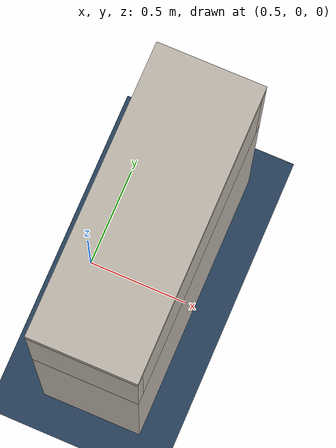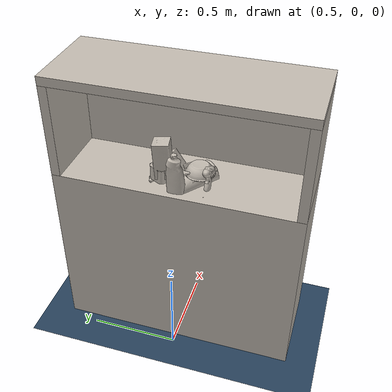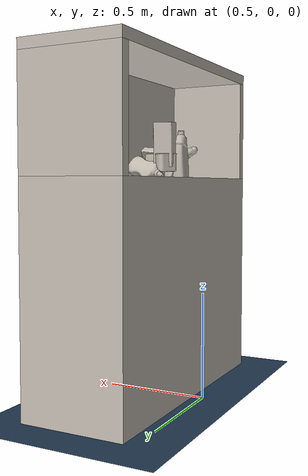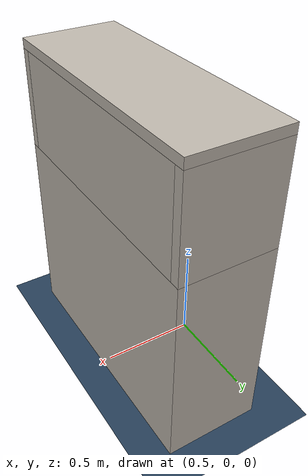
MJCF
<mujoco model="World">

  <compiler angle="radian" balanceinertia="true" inertiafromgeom="true" meshdir="/home/pracsys/GraspClutter6D_local" texturedir="/home/pracsys/GraspClutter6D_local" autolimits="true" />

  <option integrator="Euler" cone="elliptic" solver="CG" noslip_iterations="2">
    <flag warmstart="disable" multiccd="enable" />
  </option>

  <default>
    <geom density="10" />
  </default>

  <asset>

    <texture type="skybox" builtin="flat" rgb1="1 1 1" rgb2="0 0 0" width="512" height="512" />
    <texture name="grid" type="2d" builtin="checker" width="512" height="512" rgb1=".1 .2 .3" rgb2=".2 .3 .4" />
    <material name="grid" texture="grid" texrepeat="2 2" texuniform="true" specular="0" shininess="0" reflectance="0" emission="1" />

    <texture file="models/rs_table/ceramic.png" type="cube" name="tex-ceramic" />
    <material name="table_ceramic" reflectance="0.0" shininess="0.0" specular="0.2" texrepeat="1 1" texture="tex-ceramic" />
  <texture name="obj_000003_0_tex" type="2d" file="models_obj_m/obj_000003/obj_000003.png" /><material name="obj_000003_0_mat" texture="obj_000003_0_tex" specular="1.0" shininess="0.0" /><mesh name="obj_000003_0_vis" file="models_obj_m/obj_000003/obj_000003.obj" /><mesh name="obj_000003_0_obj_000003_collision_0" file="models_obj_m/obj_000003/obj_000003_collision_0.obj" /><mesh name="obj_000003_0_obj_000003_collision_1" file="models_obj_m/obj_000003/obj_000003_collision_1.obj" /><texture name="obj_000004_0_tex" type="2d" file="models_obj_m/obj_000004/obj_000004.png" /><material name="obj_000004_0_mat" texture="obj_000004_0_tex" specular="1.0" shininess="0.0" /><mesh name="obj_000004_0_vis" file="models_obj_m/obj_000004/obj_000004.obj" /><mesh name="obj_000004_0_obj_000004_collision_0" file="models_obj_m/obj_000004/obj_000004_collision_0.obj" /><mesh name="obj_000004_0_obj_000004_collision_1" file="models_obj_m/obj_000004/obj_000004_collision_1.obj" /><mesh name="obj_000004_0_obj_000004_collision_2" file="models_obj_m/obj_000004/obj_000004_collision_2.obj" /><mesh name="obj_000004_0_obj_000004_collision_3" file="models_obj_m/obj_000004/obj_000004_collision_3.obj" /><mesh name="obj_000004_0_obj_000004_collision_4" file="models_obj_m/obj_000004/obj_000004_collision_4.obj" /><mesh name="obj_000004_0_obj_000004_collision_5" file="models_obj_m/obj_000004/obj_000004_collision_5.obj" /><mesh name="obj_000004_0_obj_000004_collision_6" file="models_obj_m/obj_000004/obj_000004_collision_6.obj" /><mesh name="obj_000004_0_obj_000004_collision_7" file="models_obj_m/obj_000004/obj_000004_collision_7.obj" /><mesh name="obj_000004_0_obj_000004_collision_8" file="models_obj_m/obj_000004/obj_000004_collision_8.obj" /><mesh name="obj_000004_0_obj_000004_collision_9" file="models_obj_m/obj_000004/obj_000004_collision_9.obj" /><mesh name="obj_000004_0_obj_000004_collision_10" file="models_obj_m/obj_000004/obj_000004_collision_10.obj" /><mesh name="obj_000004_0_obj_000004_collision_11" file="models_obj_m/obj_000004/obj_000004_collision_11.obj" /><mesh name="obj_000004_0_obj_000004_collision_12" file="models_obj_m/obj_000004/obj_000004_collision_12.obj" /><mesh name="obj_000004_0_obj_000004_collision_13" file="models_obj_m/obj_000004/obj_000004_collision_13.obj" /><mesh name="obj_000004_0_obj_000004_collision_14" file="models_obj_m/obj_000004/obj_000004_collision_14.obj" /><mesh name="obj_000004_0_obj_000004_collision_15" file="models_obj_m/obj_000004/obj_000004_collision_15.obj" /><mesh name="obj_000004_0_obj_000004_collision_16" file="models_obj_m/obj_000004/obj_000004_collision_16.obj" /><mesh name="obj_000004_0_obj_000004_collision_17" file="models_obj_m/obj_000004/obj_000004_collision_17.obj" /><mesh name="obj_000004_0_obj_000004_collision_18" file="models_obj_m/obj_000004/obj_000004_collision_18.obj" /><mesh name="obj_000004_0_obj_000004_collision_19" file="models_obj_m/obj_000004/obj_000004_collision_19.obj" /><mesh name="obj_000004_0_obj_000004_collision_20" file="models_obj_m/obj_000004/obj_000004_collision_20.obj" /><mesh name="obj_000004_0_obj_000004_collision_21" file="models_obj_m/obj_000004/obj_000004_collision_21.obj" /><mesh name="obj_000004_0_obj_000004_collision_22" file="models_obj_m/obj_000004/obj_000004_collision_22.obj" /><texture name="obj_000005_0_tex" type="2d" file="models_obj_m/obj_000005/obj_000005.png" /><material name="obj_000005_0_mat" texture="obj_000005_0_tex" specular="1.0" shininess="0.0" /><mesh name="obj_000005_0_vis" file="models_obj_m/obj_000005/obj_000005.obj" /><mesh name="obj_000005_0_obj_000005_collision_0" file="models_obj_m/obj_000005/obj_000005_collision_0.obj" /><mesh name="obj_000005_0_obj_000005_collision_1" file="models_obj_m/obj_000005/obj_000005_collision_1.obj" /><mesh name="obj_000005_0_obj_000005_collision_2" file="models_obj_m/obj_000005/obj_000005_collision_2.obj" /><mesh name="obj_000005_0_obj_000005_collision_3" file="models_obj_m/obj_000005/obj_000005_collision_3.obj" /><texture name="obj_000007_0_tex" type="2d" file="models_obj_m/obj_000007/obj_000007.png" /><material name="obj_000007_0_mat" texture="obj_000007_0_tex" specular="1.0" shininess="0.0" /><mesh name="obj_000007_0_vis" file="models_obj_m/obj_000007/obj_000007.obj" /><mesh name="obj_000007_0_obj_000007_collision_0" file="models_obj_m/obj_000007/obj_000007_collision_0.obj" /><mesh name="obj_000007_0_obj_000007_collision_1" file="models_obj_m/obj_000007/obj_000007_collision_1.obj" /><mesh name="obj_000007_0_obj_000007_collision_2" file="models_obj_m/obj_000007/obj_000007_collision_2.obj" /><mesh name="obj_000007_0_obj_000007_collision_3" file="models_obj_m/obj_000007/obj_000007_collision_3.obj" /><mesh name="obj_000007_0_obj_000007_collision_4" file="models_obj_m/obj_000007/obj_000007_collision_4.obj" /><mesh name="obj_000007_0_obj_000007_collision_5" file="models_obj_m/obj_000007/obj_000007_collision_5.obj" /><mesh name="obj_000007_0_obj_000007_collision_6" file="models_obj_m/obj_000007/obj_000007_collision_6.obj" /><mesh name="obj_000007_0_obj_000007_collision_7" file="models_obj_m/obj_000007/obj_000007_collision_7.obj" /><mesh name="obj_000007_0_obj_000007_collision_8" file="models_obj_m/obj_000007/obj_000007_collision_8.obj" /><texture name="obj_000008_0_tex" type="2d" file="models_obj_m/obj_000008/obj_000008.png" /><material name="obj_000008_0_mat" texture="obj_000008_0_tex" specular="1.0" shininess="0.0" /><mesh name="obj_000008_0_vis" file="models_obj_m/obj_000008/obj_000008.obj" /><mesh name="obj_000008_0_obj_000008_collision_0" file="models_obj_m/obj_000008/obj_000008_collision_0.obj" /><mesh name="obj_000008_0_obj_000008_collision_1" file="models_obj_m/obj_000008/obj_000008_collision_1.obj" /><texture name="obj_000009_0_tex" type="2d" file="models_obj_m/obj_000009/obj_000010.png" /><material name="obj_000009_0_mat" texture="obj_000009_0_tex" specular="1.0" shininess="0.0" /><mesh name="obj_000009_0_vis" file="models_obj_m/obj_000009/obj_000009.obj" /><mesh name="obj_000009_0_obj_000009_collision_0" file="models_obj_m/obj_000009/obj_000009_collision_0.obj" /><mesh name="obj_000009_0_obj_000009_collision_1" file="models_obj_m/obj_000009/obj_000009_collision_1.obj" /><mesh name="obj_000009_0_obj_000009_collision_2" file="models_obj_m/obj_000009/obj_000009_collision_2.obj" /><mesh name="obj_000009_0_obj_000009_collision_3" file="models_obj_m/obj_000009/obj_000009_collision_3.obj" /><mesh name="obj_000009_0_obj_000009_collision_4" file="models_obj_m/obj_000009/obj_000009_collision_4.obj" /><mesh name="obj_000009_0_obj_000009_collision_5" file="models_obj_m/obj_000009/obj_000009_collision_5.obj" /><mesh name="obj_000009_0_obj_000009_collision_6" file="models_obj_m/obj_000009/obj_000009_collision_6.obj" /><mesh name="obj_000009_0_obj_000009_collision_7" file="models_obj_m/obj_000009/obj_000009_collision_7.obj" /><mesh name="obj_000009_0_obj_000009_collision_8" file="models_obj_m/obj_000009/obj_000009_collision_8.obj" /><mesh name="obj_000009_0_obj_000009_collision_9" file="models_obj_m/obj_000009/obj_000009_collision_9.obj" /><mesh name="obj_000009_0_obj_000009_collision_10" file="models_obj_m/obj_000009/obj_000009_collision_10.obj" /><mesh name="obj_000009_0_obj_000009_collision_11" file="models_obj_m/obj_000009/obj_000009_collision_11.obj" /><mesh name="obj_000009_0_obj_000009_collision_12" file="models_obj_m/obj_000009/obj_000009_collision_12.obj" /><mesh name="obj_000009_0_obj_000009_collision_13" file="models_obj_m/obj_000009/obj_000009_collision_13.obj" /><mesh name="obj_000009_0_obj_000009_collision_14" file="models_obj_m/obj_000009/obj_000009_collision_14.obj" /><mesh name="obj_000009_0_obj_000009_collision_15" file="models_obj_m/obj_000009/obj_000009_collision_15.obj" /><mesh name="obj_000009_0_obj_000009_collision_16" file="models_obj_m/obj_000009/obj_000009_collision_16.obj" /><mesh name="obj_000009_0_obj_000009_collision_17" file="models_obj_m/obj_000009/obj_000009_collision_17.obj" /><mesh name="obj_000009_0_obj_000009_collision_18" file="models_obj_m/obj_000009/obj_000009_collision_18.obj" /><mesh name="obj_000009_0_obj_000009_collision_19" file="models_obj_m/obj_000009/obj_000009_collision_19.obj" /><texture name="obj_000011_0_tex" type="2d" file="models_obj_m/obj_000011/obj_000011.png" /><material name="obj_000011_0_mat" texture="obj_000011_0_tex" specular="1.0" shininess="0.0" /><mesh name="obj_000011_0_vis" file="models_obj_m/obj_000011/obj_000011.obj" /><mesh name="obj_000011_0_obj_000011_collision_0" file="models_obj_m/obj_000011/obj_000011_collision_0.obj" /><mesh name="obj_000011_0_obj_000011_collision_1" file="models_obj_m/obj_000011/obj_000011_collision_1.obj" /><texture name="obj_000012_0_tex" type="2d" file="models_obj_m/obj_000012/obj_000013.png" /><material name="obj_000012_0_mat" texture="obj_000012_0_tex" specular="1.0" shininess="0.0" /><mesh name="obj_000012_0_vis" file="models_obj_m/obj_000012/obj_000012.obj" /><mesh name="obj_000012_0_obj_000012_collision_0" file="models_obj_m/obj_000012/obj_000012_collision_0.obj" /><mesh name="obj_000012_0_obj_000012_collision_1" file="models_obj_m/obj_000012/obj_000012_collision_1.obj" /><mesh name="obj_000012_0_obj_000012_collision_2" file="models_obj_m/obj_000012/obj_000012_collision_2.obj" /><texture name="obj_000013_0_tex" type="2d" file="models_obj_m/obj_000013/obj_000014.png" /><material name="obj_000013_0_mat" texture="obj_000013_0_tex" specular="1.0" shininess="0.0" /><mesh name="obj_000013_0_vis" file="models_obj_m/obj_000013/obj_000013.obj" /><mesh name="obj_000013_0_obj_000013_collision_0" file="models_obj_m/obj_000013/obj_000013_collision_0.obj" /><mesh name="obj_000013_0_obj_000013_collision_1" file="models_obj_m/obj_000013/obj_000013_collision_1.obj" /><mesh name="obj_000013_0_obj_000013_collision_2" file="models_obj_m/obj_000013/obj_000013_collision_2.obj" /><mesh name="obj_000013_0_obj_000013_collision_3" file="models_obj_m/obj_000013/obj_000013_collision_3.obj" /><mesh name="obj_000013_0_obj_000013_collision_4" file="models_obj_m/obj_000013/obj_000013_collision_4.obj" /><mesh name="obj_000013_0_obj_000013_collision_5" file="models_obj_m/obj_000013/obj_000013_collision_5.obj" /><mesh name="obj_000013_0_obj_000013_collision_6" file="models_obj_m/obj_000013/obj_000013_collision_6.obj" /><mesh name="obj_000013_0_obj_000013_collision_7" file="models_obj_m/obj_000013/obj_000013_collision_7.obj" /><mesh name="obj_000013_0_obj_000013_collision_8" file="models_obj_m/obj_000013/obj_000013_collision_8.obj" /><mesh name="obj_000013_0_obj_000013_collision_9" file="models_obj_m/obj_000013/obj_000013_collision_9.obj" /><mesh name="obj_000013_0_obj_000013_collision_10" file="models_obj_m/obj_000013/obj_000013_collision_10.obj" /><mesh name="obj_000013_0_obj_000013_collision_11" file="models_obj_m/obj_000013/obj_000013_collision_11.obj" /><mesh name="obj_000013_0_obj_000013_collision_12" file="models_obj_m/obj_000013/obj_000013_collision_12.obj" /><mesh name="obj_000013_0_obj_000013_collision_13" file="models_obj_m/obj_000013/obj_000013_collision_13.obj" /><mesh name="obj_000013_0_obj_000013_collision_14" file="models_obj_m/obj_000013/obj_000013_collision_14.obj" /><mesh name="obj_000013_0_obj_000013_collision_15" file="models_obj_m/obj_000013/obj_000013_collision_15.obj" /><mesh name="obj_000013_0_obj_000013_collision_16" file="models_obj_m/obj_000013/obj_000013_collision_16.obj" /><mesh name="obj_000013_0_obj_000013_collision_17" file="models_obj_m/obj_000013/obj_000013_collision_17.obj" /><mesh name="obj_000013_0_obj_000013_collision_18" file="models_obj_m/obj_000013/obj_000013_collision_18.obj" /><mesh name="obj_000013_0_obj_000013_collision_19" file="models_obj_m/obj_000013/obj_000013_collision_19.obj" /><mesh name="obj_000013_0_obj_000013_collision_20" file="models_obj_m/obj_000013/obj_000013_collision_20.obj" /><mesh name="obj_000013_0_obj_000013_collision_21" file="models_obj_m/obj_000013/obj_000013_collision_21.obj" /><mesh name="obj_000013_0_obj_000013_collision_22" file="models_obj_m/obj_000013/obj_000013_collision_22.obj" /><mesh name="obj_000013_0_obj_000013_collision_23" file="models_obj_m/obj_000013/obj_000013_collision_23.obj" /><mesh name="obj_000013_0_obj_000013_collision_24" file="models_obj_m/obj_000013/obj_000013_collision_24.obj" /><mesh name="obj_000013_0_obj_000013_collision_25" file="models_obj_m/obj_000013/obj_000013_collision_25.obj" /><mesh name="obj_000013_0_obj_000013_collision_26" file="models_obj_m/obj_000013/obj_000013_collision_26.obj" /><mesh name="obj_000013_0_obj_000013_collision_27" file="models_obj_m/obj_000013/obj_000013_collision_27.obj" /><mesh name="obj_000013_0_obj_000013_collision_28" file="models_obj_m/obj_000013/obj_000013_collision_28.obj" /><mesh name="obj_000013_0_obj_000013_collision_29" file="models_obj_m/obj_000013/obj_000013_collision_29.obj" /><mesh name="obj_000013_0_obj_000013_collision_30" file="models_obj_m/obj_000013/obj_000013_collision_30.obj" /><mesh name="obj_000013_0_obj_000013_collision_31" file="models_obj_m/obj_000013/obj_000013_collision_31.obj" /><mesh name="obj_000013_0_obj_000013_collision_32" file="models_obj_m/obj_000013/obj_000013_collision_32.obj" /><mesh name="obj_000013_0_obj_000013_collision_33" file="models_obj_m/obj_000013/obj_000013_collision_33.obj" /><mesh name="obj_000013_0_obj_000013_collision_34" file="models_obj_m/obj_000013/obj_000013_collision_34.obj" /><mesh name="obj_000013_0_obj_000013_collision_35" file="models_obj_m/obj_000013/obj_000013_collision_35.obj" /><mesh name="obj_000013_0_obj_000013_collision_36" file="models_obj_m/obj_000013/obj_000013_collision_36.obj" /><mesh name="obj_000013_0_obj_000013_collision_37" file="models_obj_m/obj_000013/obj_000013_collision_37.obj" /><mesh name="obj_000013_0_obj_000013_collision_38" file="models_obj_m/obj_000013/obj_000013_collision_38.obj" /><mesh name="obj_000013_0_obj_000013_collision_39" file="models_obj_m/obj_000013/obj_000013_collision_39.obj" /><mesh name="obj_000013_0_obj_000013_collision_40" file="models_obj_m/obj_000013/obj_000013_collision_40.obj" /><mesh name="obj_000013_0_obj_000013_collision_41" file="models_obj_m/obj_000013/obj_000013_collision_41.obj" /><mesh name="obj_000013_0_obj_000013_collision_42" file="models_obj_m/obj_000013/obj_000013_collision_42.obj" /><texture name="obj_000014_0_tex" type="2d" file="models_obj_m/obj_000014/obj_000014.png" /><material name="obj_000014_0_mat" texture="obj_000014_0_tex" specular="1.0" shininess="0.0" /><mesh name="obj_000014_0_vis" file="models_obj_m/obj_000014/obj_000014.obj" /><mesh name="obj_000014_0_obj_000014_collision_0" file="models_obj_m/obj_000014/obj_000014_collision_0.obj" /><mesh name="obj_000014_0_obj_000014_collision_1" file="models_obj_m/obj_000014/obj_000014_collision_1.obj" /><mesh name="obj_000014_0_obj_000014_collision_2" file="models_obj_m/obj_000014/obj_000014_collision_2.obj" /><mesh name="obj_000014_0_obj_000014_collision_3" file="models_obj_m/obj_000014/obj_000014_collision_3.obj" /><mesh name="obj_000014_0_obj_000014_collision_4" file="models_obj_m/obj_000014/obj_000014_collision_4.obj" /><mesh name="obj_000014_0_obj_000014_collision_5" file="models_obj_m/obj_000014/obj_000014_collision_5.obj" /><mesh name="obj_000014_0_obj_000014_collision_6" file="models_obj_m/obj_000014/obj_000014_collision_6.obj" /><mesh name="obj_000014_0_obj_000014_collision_7" file="models_obj_m/obj_000014/obj_000014_collision_7.obj" /><mesh name="obj_000014_0_obj_000014_collision_8" file="models_obj_m/obj_000014/obj_000014_collision_8.obj" /><mesh name="obj_000014_0_obj_000014_collision_9" file="models_obj_m/obj_000014/obj_000014_collision_9.obj" /><mesh name="obj_000014_0_obj_000014_collision_10" file="models_obj_m/obj_000014/obj_000014_collision_10.obj" /><mesh name="obj_000014_0_obj_000014_collision_11" file="models_obj_m/obj_000014/obj_000014_collision_11.obj" /><mesh name="obj_000014_0_obj_000014_collision_12" file="models_obj_m/obj_000014/obj_000014_collision_12.obj" /><mesh name="obj_000014_0_obj_000014_collision_13" file="models_obj_m/obj_000014/obj_000014_collision_13.obj" /><mesh name="obj_000014_0_obj_000014_collision_14" file="models_obj_m/obj_000014/obj_000014_collision_14.obj" /><mesh name="obj_000014_0_obj_000014_collision_15" file="models_obj_m/obj_000014/obj_000014_collision_15.obj" /><mesh name="obj_000014_0_obj_000014_collision_16" file="models_obj_m/obj_000014/obj_000014_collision_16.obj" /><mesh name="obj_000014_0_obj_000014_collision_17" file="models_obj_m/obj_000014/obj_000014_collision_17.obj" /><mesh name="obj_000014_0_obj_000014_collision_18" file="models_obj_m/obj_000014/obj_000014_collision_18.obj" /><mesh name="obj_000014_0_obj_000014_collision_19" file="models_obj_m/obj_000014/obj_000014_collision_19.obj" /><mesh name="obj_000014_0_obj_000014_collision_20" file="models_obj_m/obj_000014/obj_000014_collision_20.obj" /><mesh name="obj_000014_0_obj_000014_collision_21" file="models_obj_m/obj_000014/obj_000014_collision_21.obj" /><mesh name="obj_000014_0_obj_000014_collision_22" file="models_obj_m/obj_000014/obj_000014_collision_22.obj" /><mesh name="obj_000014_0_obj_000014_collision_23" file="models_obj_m/obj_000014/obj_000014_collision_23.obj" /><mesh name="obj_000014_0_obj_000014_collision_24" file="models_obj_m/obj_000014/obj_000014_collision_24.obj" /><mesh name="obj_000014_0_obj_000014_collision_25" file="models_obj_m/obj_000014/obj_000014_collision_25.obj" /><mesh name="obj_000014_0_obj_000014_collision_26" file="models_obj_m/obj_000014/obj_000014_collision_26.obj" /><mesh name="obj_000014_0_obj_000014_collision_27" file="models_obj_m/obj_000014/obj_000014_collision_27.obj" /><mesh name="obj_000014_0_obj_000014_collision_28" file="models_obj_m/obj_000014/obj_000014_collision_28.obj" /><mesh name="obj_000014_0_obj_000014_collision_29" file="models_obj_m/obj_000014/obj_000014_collision_29.obj" /><mesh name="obj_000014_0_obj_000014_collision_30" file="models_obj_m/obj_000014/obj_000014_collision_30.obj" /><mesh name="obj_000014_0_obj_000014_collision_31" file="models_obj_m/obj_000014/obj_000014_collision_31.obj" /><mesh name="obj_000014_0_obj_000014_collision_32" file="models_obj_m/obj_000014/obj_000014_collision_32.obj" /><mesh name="obj_000014_0_obj_000014_collision_33" file="models_obj_m/obj_000014/obj_000014_collision_33.obj" /><mesh name="obj_000014_0_obj_000014_collision_34" file="models_obj_m/obj_000014/obj_000014_collision_34.obj" /><mesh name="obj_000014_0_obj_000014_collision_35" file="models_obj_m/obj_000014/obj_000014_collision_35.obj" /><mesh name="obj_000014_0_obj_000014_collision_36" file="models_obj_m/obj_000014/obj_000014_collision_36.obj" /><mesh name="obj_000014_0_obj_000014_collision_37" file="models_obj_m/obj_000014/obj_000014_collision_37.obj" /><mesh name="obj_000014_0_obj_000014_collision_38" file="models_obj_m/obj_000014/obj_000014_collision_38.obj" /><texture name="obj_000015_0_tex" type="2d" file="models_obj_m/obj_000015/obj_000015.png" /><material name="obj_000015_0_mat" texture="obj_000015_0_tex" specular="1.0" shininess="0.0" /><mesh name="obj_000015_0_vis" file="models_obj_m/obj_000015/obj_000015.obj" /><mesh name="obj_000015_0_obj_000015_collision_0" file="models_obj_m/obj_000015/obj_000015_collision_0.obj" /><mesh name="obj_000015_0_obj_000015_collision_1" file="models_obj_m/obj_000015/obj_000015_collision_1.obj" /><texture name="obj_000016_0_tex" type="2d" file="models_obj_m/obj_000016/obj_000016.png" /><material name="obj_000016_0_mat" texture="obj_000016_0_tex" specular="1.0" shininess="0.0" /><mesh name="obj_000016_0_vis" file="models_obj_m/obj_000016/obj_000016.obj" /><mesh name="obj_000016_0_obj_000016_collision_0" file="models_obj_m/obj_000016/obj_000016_collision_0.obj" /><mesh name="obj_000016_0_obj_000016_collision_1" file="models_obj_m/obj_000016/obj_000016_collision_1.obj" /><texture name="obj_000017_0_tex" type="2d" file="models_obj_m/obj_000017/obj_000018.png" /><material name="obj_000017_0_mat" texture="obj_000017_0_tex" specular="1.0" shininess="0.0" /><mesh name="obj_000017_0_vis" file="models_obj_m/obj_000017/obj_000017.obj" /><mesh name="obj_000017_0_obj_000017_collision_0" file="models_obj_m/obj_000017/obj_000017_collision_0.obj" /><mesh name="obj_000017_0_obj_000017_collision_1" file="models_obj_m/obj_000017/obj_000017_collision_1.obj" /><mesh name="obj_000017_0_obj_000017_collision_2" file="models_obj_m/obj_000017/obj_000017_collision_2.obj" /><mesh name="obj_000017_0_obj_000017_collision_3" file="models_obj_m/obj_000017/obj_000017_collision_3.obj" /><mesh name="obj_000017_0_obj_000017_collision_4" file="models_obj_m/obj_000017/obj_000017_collision_4.obj" /><mesh name="obj_000017_0_obj_000017_collision_5" file="models_obj_m/obj_000017/obj_000017_collision_5.obj" /><mesh name="obj_000017_0_obj_000017_collision_6" file="models_obj_m/obj_000017/obj_000017_collision_6.obj" /><mesh name="obj_000017_0_obj_000017_collision_7" file="models_obj_m/obj_000017/obj_000017_collision_7.obj" /><mesh name="obj_000017_0_obj_000017_collision_8" file="models_obj_m/obj_000017/obj_000017_collision_8.obj" /><mesh name="obj_000017_0_obj_000017_collision_9" file="models_obj_m/obj_000017/obj_000017_collision_9.obj" /><mesh name="obj_000017_0_obj_000017_collision_10" file="models_obj_m/obj_000017/obj_000017_collision_10.obj" /><mesh name="obj_000017_0_obj_000017_collision_11" file="models_obj_m/obj_000017/obj_000017_collision_11.obj" /><mesh name="obj_000017_0_obj_000017_collision_12" file="models_obj_m/obj_000017/obj_000017_collision_12.obj" /><mesh name="obj_000017_0_obj_000017_collision_13" file="models_obj_m/obj_000017/obj_000017_collision_13.obj" /><mesh name="obj_000017_0_obj_000017_collision_14" file="models_obj_m/obj_000017/obj_000017_collision_14.obj" /><mesh name="obj_000017_0_obj_000017_collision_15" file="models_obj_m/obj_000017/obj_000017_collision_15.obj" /><mesh name="obj_000017_0_obj_000017_collision_16" file="models_obj_m/obj_000017/obj_000017_collision_16.obj" /><mesh name="obj_000017_0_obj_000017_collision_17" file="models_obj_m/obj_000017/obj_000017_collision_17.obj" /><mesh name="obj_000017_0_obj_000017_collision_18" file="models_obj_m/obj_000017/obj_000017_collision_18.obj" /><mesh name="obj_000017_0_obj_000017_collision_19" file="models_obj_m/obj_000017/obj_000017_collision_19.obj" /><mesh name="obj_000017_0_obj_000017_collision_20" file="models_obj_m/obj_000017/obj_000017_collision_20.obj" /><mesh name="obj_000017_0_obj_000017_collision_21" file="models_obj_m/obj_000017/obj_000017_collision_21.obj" /><mesh name="obj_000017_0_obj_000017_collision_22" file="models_obj_m/obj_000017/obj_000017_collision_22.obj" /><mesh name="obj_000017_0_obj_000017_collision_23" file="models_obj_m/obj_000017/obj_000017_collision_23.obj" /><mesh name="obj_000017_0_obj_000017_collision_24" file="models_obj_m/obj_000017/obj_000017_collision_24.obj" /><mesh name="obj_000017_0_obj_000017_collision_25" file="models_obj_m/obj_000017/obj_000017_collision_25.obj" /><mesh name="obj_000017_0_obj_000017_collision_26" file="models_obj_m/obj_000017/obj_000017_collision_26.obj" /><mesh name="obj_000017_0_obj_000017_collision_27" file="models_obj_m/obj_000017/obj_000017_collision_27.obj" /></asset>

  <worldbody>
    <geom name="floor" size="2 2 0.05" type="plane" material="grid" condim="3" />
    <light directional="true" pos="-0.5 0.5 3" dir="0 0 -1" castshadow="false" diffuse="1 1 1" />
    <body name="workspace" pos="0.8 0 0">
      <geom name="shelf_bottom" size="0.25 0.68 0.525" pos="0 0 0.525" type="box" material="table_ceramic" />
      <geom name="shelf_top" size="0.25 0.68 0.025" pos="0 0 1.595" type="box" material="table_ceramic" />
      <geom name="shelf_padding_left" size="0.25 0.025 0.26" pos="0 -0.655 1.31" type="box" material="table_ceramic" />
      <geom name="shelf_padding_right" size="0.25 0.025 0.26" pos="0 0.655 1.31" type="box" material="table_ceramic" />
      <geom name="shelf_padding_back" size="0.05 0.63 0.26" pos="0.2 0 1.31" type="box" material="table_ceramic" />
    </body>
  <body name="obj_000003_0" pos="0.7398774645984779 0.030803465620769882 1.1090335032421221" quat="0.7216060114727308 -0.22865275685680678 0.21883988701550572 0.6157205411866972"><joint name="obj_000003_0_joint" type="free" limited="false" actuatorfrclimited="false" /><geom name="obj_000003_0_geom" type="mesh" contype="0" conaffinity="0" group="1" mesh="obj_000003_0_vis" material="obj_000003_0_mat" /><geom type="mesh" contype="3" conaffinity="3" group="3" rgba="0.522509730671621 0.2757706064801614 0.3354227120316712 1" mesh="obj_000003_0_obj_000003_collision_0" /><geom type="mesh" contype="3" conaffinity="3" group="3" rgba="0.5516880957351997 0.30786775055087157 0.8022185455408283 1" mesh="obj_000003_0_obj_000003_collision_1" /></body><body name="obj_000004_0" pos="0.7807166520652554 0.1060681679698029 1.067837693718874" quat="0.5338744000833219 0.4877948835821048 0.523269738152525 0.45080268147004343"><joint name="obj_000004_0_joint" type="free" limited="false" actuatorfrclimited="false" /><geom name="obj_000004_0_geom" type="mesh" contype="0" conaffinity="0" group="1" mesh="obj_000004_0_vis" material="obj_000004_0_mat" /><geom type="mesh" contype="3" conaffinity="3" group="3" rgba="0.9006364109388675 0.519839966144869 0.14706711888770962 1" mesh="obj_000004_0_obj_000004_collision_0" /><geom type="mesh" contype="3" conaffinity="3" group="3" rgba="0.5381862094377646 0.9079565306792778 0.5860391296454226 1" mesh="obj_000004_0_obj_000004_collision_1" /><geom type="mesh" contype="3" conaffinity="3" group="3" rgba="0.5480980169898275 0.08959733837327 0.9583058214694634 1" mesh="obj_000004_0_obj_000004_collision_2" /><geom type="mesh" contype="3" conaffinity="3" group="3" rgba="0.7348365413245799 0.9954340839881138 0.10043620261647124 1" mesh="obj_000004_0_obj_000004_collision_3" /><geom type="mesh" contype="3" conaffinity="3" group="3" rgba="0.15354151346682998 0.3992493537144245 0.9018485612644948 1" mesh="obj_000004_0_obj_000004_collision_4" /><geom type="mesh" contype="3" conaffinity="3" group="3" rgba="0.5002296823323479 0.06984196192688352 0.14791196849948396 1" mesh="obj_000004_0_obj_000004_collision_5" /><geom type="mesh" contype="3" conaffinity="3" group="3" rgba="0.8801698595600871 0.26981609947861984 0.5413749209604201 1" mesh="obj_000004_0_obj_000004_collision_6" /><geom type="mesh" contype="3" conaffinity="3" group="3" rgba="0.7455497002678284 0.842184542639177 0.5322202076862146 1" mesh="obj_000004_0_obj_000004_collision_7" /><geom type="mesh" contype="3" conaffinity="3" group="3" rgba="0.4442591382610347 0.03638499919506211 0.32497635780499234 1" mesh="obj_000004_0_obj_000004_collision_8" /><geom type="mesh" contype="3" conaffinity="3" group="3" rgba="0.347627915730894 0.06862688241171433 0.2798410387094733 1" mesh="obj_000004_0_obj_000004_collision_9" /><geom type="mesh" contype="3" conaffinity="3" group="3" rgba="0.37436058860529653 0.8129023073913533 0.26614439644261234 1" mesh="obj_000004_0_obj_000004_collision_10" /><geom type="mesh" contype="3" conaffinity="3" group="3" rgba="0.6651690258226822 0.3522546747219869 0.10346100033130279 1" mesh="obj_000004_0_obj_000004_collision_11" /><geom type="mesh" contype="3" conaffinity="3" group="3" rgba="0.37709868933847024 0.90775268626264 0.22612048573823684 1" mesh="obj_000004_0_obj_000004_collision_12" /><geom type="mesh" contype="3" conaffinity="3" group="3" rgba="0.40627473735328157 0.5372136836683266 0.09197578627779501 1" mesh="obj_000004_0_obj_000004_collision_13" /><geom type="mesh" contype="3" conaffinity="3" group="3" rgba="0.5166762315831523 0.5043939028531624 0.5872248864695762 1" mesh="obj_000004_0_obj_000004_collision_14" /><geom type="mesh" contype="3" conaffinity="3" group="3" rgba="0.9082988442703623 0.180499146533042 0.06796330417599283 1" mesh="obj_000004_0_obj_000004_collision_15" /><geom type="mesh" contype="3" conaffinity="3" group="3" rgba="0.3943402105248509 0.6197627239371787 0.4344456177319421 1" mesh="obj_000004_0_obj_000004_collision_16" /><geom type="mesh" contype="3" conaffinity="3" group="3" rgba="0.7831743542292524 0.42593724102287467 0.6857518540249657 1" mesh="obj_000004_0_obj_000004_collision_17" /><geom type="mesh" contype="3" conaffinity="3" group="3" rgba="0.16096816650240264 0.6010361248517645 0.059463136740677824 1" mesh="obj_000004_0_obj_000004_collision_18" /><geom type="mesh" contype="3" conaffinity="3" group="3" rgba="0.44263326221518995 0.2502881781833013 0.38014160116271456 1" mesh="obj_000004_0_obj_000004_collision_19" /><geom type="mesh" contype="3" conaffinity="3" group="3" rgba="0.5463028526085283 0.845330838869169 0.028012824828687388 1" mesh="obj_000004_0_obj_000004_collision_20" /><geom type="mesh" contype="3" conaffinity="3" group="3" rgba="0.19910255883632533 0.853207251405083 0.4267815842990055 1" mesh="obj_000004_0_obj_000004_collision_21" /><geom type="mesh" contype="3" conaffinity="3" group="3" rgba="0.013081679159259063 0.8478266493247634 0.5767717804295942 1" mesh="obj_000004_0_obj_000004_collision_22" /></body><body name="obj_000005_0" pos="0.7284989947019965 0.13235466193933598 1.0837065733890465" quat="0.580484216075862 0.015247032007712333 -0.800961535741581 -0.14582942489167158"><joint name="obj_000005_0_joint" type="free" limited="false" actuatorfrclimited="false" /><geom name="obj_000005_0_geom" type="mesh" contype="0" conaffinity="0" group="1" mesh="obj_000005_0_vis" material="obj_000005_0_mat" /><geom type="mesh" contype="3" conaffinity="3" group="3" rgba="0.7022177830689367 0.5826341853352067 0.8165841864018348 1" mesh="obj_000005_0_obj_000005_collision_0" /><geom type="mesh" contype="3" conaffinity="3" group="3" rgba="0.8850110305129232 0.6858243586259702 0.23668113982222616 1" mesh="obj_000005_0_obj_000005_collision_1" /><geom type="mesh" contype="3" conaffinity="3" group="3" rgba="0.3521162735319521 0.8507480837221914 0.47569448758993216 1" mesh="obj_000005_0_obj_000005_collision_2" /><geom type="mesh" contype="3" conaffinity="3" group="3" rgba="0.9128805975392907 0.1623848974121762 0.6573614293432378 1" mesh="obj_000005_0_obj_000005_collision_3" /></body><body name="obj_000007_0" pos="0.7168596790080464 0.0730124052008097 1.1053110912906454" quat="0.5748936844714575 -0.6526526143680562 0.3616690096110716 0.3357638217561859"><joint name="obj_000007_0_joint" type="free" limited="false" actuatorfrclimited="false" /><geom name="obj_000007_0_geom" type="mesh" contype="0" conaffinity="0" group="1" mesh="obj_000007_0_vis" material="obj_000007_0_mat" /><geom type="mesh" contype="3" conaffinity="3" group="3" rgba="0.8352706854217573 0.9362994234831694 0.293846875833475 1" mesh="obj_000007_0_obj_000007_collision_0" /><geom type="mesh" contype="3" conaffinity="3" group="3" rgba="0.19905331661291714 0.4589533019713804 0.06900329109829795 1" mesh="obj_000007_0_obj_000007_collision_1" /><geom type="mesh" contype="3" conaffinity="3" group="3" rgba="0.09308414112438301 0.15050338013169284 0.9151604575537959 1" mesh="obj_000007_0_obj_000007_collision_2" /><geom type="mesh" contype="3" conaffinity="3" group="3" rgba="0.5321495441159548 0.7015834228771671 0.15224241133161276 1" mesh="obj_000007_0_obj_000007_collision_3" /><geom type="mesh" contype="3" conaffinity="3" group="3" rgba="0.23157390654164967 0.05668202494056429 0.16362068486781922 1" mesh="obj_000007_0_obj_000007_collision_4" /><geom type="mesh" contype="3" conaffinity="3" group="3" rgba="0.434682609159569 0.02891498183785912 0.4135716003922958 1" mesh="obj_000007_0_obj_000007_collision_5" /><geom type="mesh" contype="3" conaffinity="3" group="3" rgba="0.3986174188827881 0.6060589903191558 0.6080009673791554 1" mesh="obj_000007_0_obj_000007_collision_6" /><geom type="mesh" contype="3" conaffinity="3" group="3" rgba="0.19756852407433856 0.9438271125215391 0.3383181352472745 1" mesh="obj_000007_0_obj_000007_collision_7" /><geom type="mesh" contype="3" conaffinity="3" group="3" rgba="0.8336516710698538 0.1310754047491739 0.3201867808203366 1" mesh="obj_000007_0_obj_000007_collision_8" /></body><body name="obj_000008_0" pos="0.768425327634765 -0.015402948847224512 1.072553409256788" quat="0.38385370247892486 -0.02816708159486666 -0.5356260389449015 0.7516433309834155"><joint name="obj_000008_0_joint" type="free" limited="false" actuatorfrclimited="false" /><geom name="obj_000008_0_geom" type="mesh" contype="0" conaffinity="0" group="1" mesh="obj_000008_0_vis" material="obj_000008_0_mat" /><geom type="mesh" contype="3" conaffinity="3" group="3" rgba="0.01671885427652786 0.8783564729505184 0.3287082962157769 1" mesh="obj_000008_0_obj_000008_collision_0" /><geom type="mesh" contype="3" conaffinity="3" group="3" rgba="0.2759906839891276 0.5799351894391934 0.46463070880456725 1" mesh="obj_000008_0_obj_000008_collision_1" /></body><body name="obj_000009_0" pos="0.6442457347408685 0.10651062527735564 1.118272008280703" quat="0.8745038432134127 0.008564513221066373 0.00337287150317811 0.48493123332703647"><joint name="obj_000009_0_joint" type="free" limited="false" actuatorfrclimited="false" /><geom name="obj_000009_0_geom" type="mesh" contype="0" conaffinity="0" group="1" mesh="obj_000009_0_vis" material="obj_000009_0_mat" /><geom type="mesh" contype="3" conaffinity="3" group="3" rgba="0.4701424646800718 0.15058678152224558 0.03232555140522908 1" mesh="obj_000009_0_obj_000009_collision_0" /><geom type="mesh" contype="3" conaffinity="3" group="3" rgba="0.6334264391293729 0.7000588704139452 0.9101191958261439 1" mesh="obj_000009_0_obj_000009_collision_1" /><geom type="mesh" contype="3" conaffinity="3" group="3" rgba="0.4796571013469104 0.35150290582234567 0.6375226777586448 1" mesh="obj_000009_0_obj_000009_collision_2" /><geom type="mesh" contype="3" conaffinity="3" group="3" rgba="0.8005895298046106 0.9629796370374781 0.317100801488033 1" mesh="obj_000009_0_obj_000009_collision_3" /><geom type="mesh" contype="3" conaffinity="3" group="3" rgba="0.7316817429575484 0.8125950918942385 0.9770420869852225 1" mesh="obj_000009_0_obj_000009_collision_4" /><geom type="mesh" contype="3" conaffinity="3" group="3" rgba="0.027540659115147248 0.9471989066929749 0.9744029211039258 1" mesh="obj_000009_0_obj_000009_collision_5" /><geom type="mesh" contype="3" conaffinity="3" group="3" rgba="0.2468027165587915 0.11355498828593935 0.640482643727051 1" mesh="obj_000009_0_obj_000009_collision_6" /><geom type="mesh" contype="3" conaffinity="3" group="3" rgba="0.26381115444349046 0.5064233410291425 0.06434432684247016 1" mesh="obj_000009_0_obj_000009_collision_7" /><geom type="mesh" contype="3" conaffinity="3" group="3" rgba="0.39104113124687934 0.2576147934487044 0.9823472559836796 1" mesh="obj_000009_0_obj_000009_collision_8" /><geom type="mesh" contype="3" conaffinity="3" group="3" rgba="0.9013360285468692 0.8336454994592718 0.7736518361085535 1" mesh="obj_000009_0_obj_000009_collision_9" /><geom type="mesh" contype="3" conaffinity="3" group="3" rgba="0.5638034510545271 0.2309865979911192 0.056178319664080933 1" mesh="obj_000009_0_obj_000009_collision_10" /><geom type="mesh" contype="3" conaffinity="3" group="3" rgba="0.07539982230460429 0.8840212053523439 0.37940438346802385 1" mesh="obj_000009_0_obj_000009_collision_11" /><geom type="mesh" contype="3" conaffinity="3" group="3" rgba="0.12997684997558534 0.2197119572502484 0.7348773851044048 1" mesh="obj_000009_0_obj_000009_collision_12" /><geom type="mesh" contype="3" conaffinity="3" group="3" rgba="0.4102032814193337 0.31374038786638225 0.9229380645994204 1" mesh="obj_000009_0_obj_000009_collision_13" /><geom type="mesh" contype="3" conaffinity="3" group="3" rgba="0.6775180913271598 0.3730860518815964 0.7560922645576079 1" mesh="obj_000009_0_obj_000009_collision_14" /><geom type="mesh" contype="3" conaffinity="3" group="3" rgba="0.20013413652544576 0.046709010626810876 0.4530831720844085 1" mesh="obj_000009_0_obj_000009_collision_15" /><geom type="mesh" contype="3" conaffinity="3" group="3" rgba="0.997743233778264 0.8720065066436486 0.22893873285390964 1" mesh="obj_000009_0_obj_000009_collision_16" /><geom type="mesh" contype="3" conaffinity="3" group="3" rgba="0.2486444461791405 0.8482398554397806 0.9913239367051718 1" mesh="obj_000009_0_obj_000009_collision_17" /><geom type="mesh" contype="3" conaffinity="3" group="3" rgba="0.8552881572534362 0.878526833870521 0.5714311973878448 1" mesh="obj_000009_0_obj_000009_collision_18" /><geom type="mesh" contype="3" conaffinity="3" group="3" rgba="0.6375258423342278 0.3334964947472784 0.042644175833863374 1" mesh="obj_000009_0_obj_000009_collision_19" /></body><body name="obj_000011_0" pos="0.7189076434540929 -0.06759421842501327 1.0637016227171268" quat="0.2011978333982848 0.6475243750904074 -0.21216468158059476 0.7037171046588384"><joint name="obj_000011_0_joint" type="free" limited="false" actuatorfrclimited="false" /><geom name="obj_000011_0_geom" type="mesh" contype="0" conaffinity="0" group="1" mesh="obj_000011_0_vis" material="obj_000011_0_mat" /><geom type="mesh" contype="3" conaffinity="3" group="3" rgba="0.30507868086283874 0.9701993068122707 0.0021639835779936334 1" mesh="obj_000011_0_obj_000011_collision_0" /><geom type="mesh" contype="3" conaffinity="3" group="3" rgba="0.30046086308937203 0.33184924156596896 0.2382777103232726 1" mesh="obj_000011_0_obj_000011_collision_1" /></body><body name="obj_000012_0" pos="0.6143640024036529 0.002880091104717347 1.14495070703184" quat="0.6734371700738655 -0.006418604589400972 -0.005094596783525862 0.7391990425870706"><joint name="obj_000012_0_joint" type="free" limited="false" actuatorfrclimited="false" /><geom name="obj_000012_0_geom" type="mesh" contype="0" conaffinity="0" group="1" mesh="obj_000012_0_vis" material="obj_000012_0_mat" /><geom type="mesh" contype="3" conaffinity="3" group="3" rgba="0.7554614099521485 0.6486382034608017 0.7176584907668884 1" mesh="obj_000012_0_obj_000012_collision_0" /><geom type="mesh" contype="3" conaffinity="3" group="3" rgba="0.7007292636586778 0.4517934483878622 0.09276525431541405 1" mesh="obj_000012_0_obj_000012_collision_1" /><geom type="mesh" contype="3" conaffinity="3" group="3" rgba="0.20665389244215027 0.9686490753588884 0.0818582005279912 1" mesh="obj_000012_0_obj_000012_collision_2" /></body><body name="obj_000013_0" pos="0.7264393106784814 -0.09083067588955013 1.1330463914389732" quat="0.014563037115590446 -0.5764344013787955 -0.8170132712221534 0.0007832649078806983"><joint name="obj_000013_0_joint" type="free" limited="false" actuatorfrclimited="false" /><geom name="obj_000013_0_geom" type="mesh" contype="0" conaffinity="0" group="1" mesh="obj_000013_0_vis" material="obj_000013_0_mat" /><geom type="mesh" contype="3" conaffinity="3" group="3" rgba="0.7144449078304332 0.20729995565427417 0.9178363700574447 1" mesh="obj_000013_0_obj_000013_collision_0" /><geom type="mesh" contype="3" conaffinity="3" group="3" rgba="0.8679721083209072 0.681676504550008 0.39306036015103996 1" mesh="obj_000013_0_obj_000013_collision_1" /><geom type="mesh" contype="3" conaffinity="3" group="3" rgba="0.4222762318266222 0.7236405457523389 0.5776720096370943 1" mesh="obj_000013_0_obj_000013_collision_2" /><geom type="mesh" contype="3" conaffinity="3" group="3" rgba="0.3811132546629832 0.20215465648724362 0.7520145076915546 1" mesh="obj_000013_0_obj_000013_collision_3" /><geom type="mesh" contype="3" conaffinity="3" group="3" rgba="0.8942398171755435 0.15581696020393487 0.2948183730971583 1" mesh="obj_000013_0_obj_000013_collision_4" /><geom type="mesh" contype="3" conaffinity="3" group="3" rgba="0.2417240360311006 0.7592152106015807 0.3902675366012601 1" mesh="obj_000013_0_obj_000013_collision_5" /><geom type="mesh" contype="3" conaffinity="3" group="3" rgba="0.7575682610228988 0.71336761782297 0.9000744888221621 1" mesh="obj_000013_0_obj_000013_collision_6" /><geom type="mesh" contype="3" conaffinity="3" group="3" rgba="0.6446126328225535 0.791897169193733 0.903810115591806 1" mesh="obj_000013_0_obj_000013_collision_7" /><geom type="mesh" contype="3" conaffinity="3" group="3" rgba="0.16065949094204024 0.7129315196731527 0.26362017540303107 1" mesh="obj_000013_0_obj_000013_collision_8" /><geom type="mesh" contype="3" conaffinity="3" group="3" rgba="0.3807771090070753 0.2466972699876384 0.03935990556652813 1" mesh="obj_000013_0_obj_000013_collision_9" /><geom type="mesh" contype="3" conaffinity="3" group="3" rgba="0.13563712303681397 0.6930968980104955 0.5192151078476201 1" mesh="obj_000013_0_obj_000013_collision_10" /><geom type="mesh" contype="3" conaffinity="3" group="3" rgba="0.024566780316822356 0.28274751850143287 0.43892641421651424 1" mesh="obj_000013_0_obj_000013_collision_11" /><geom type="mesh" contype="3" conaffinity="3" group="3" rgba="0.9611355436206976 0.1398983653776168 0.013281849357456355 1" mesh="obj_000013_0_obj_000013_collision_12" /><geom type="mesh" contype="3" conaffinity="3" group="3" rgba="0.16394261226899853 0.18011486841153612 0.261500747000427 1" mesh="obj_000013_0_obj_000013_collision_13" /><geom type="mesh" contype="3" conaffinity="3" group="3" rgba="0.9372545164731062 0.43083457597005825 0.2977176404473417 1" mesh="obj_000013_0_obj_000013_collision_14" /><geom type="mesh" contype="3" conaffinity="3" group="3" rgba="0.031516698743391136 0.3219220373951125 0.8781862881808276 1" mesh="obj_000013_0_obj_000013_collision_15" /><geom type="mesh" contype="3" conaffinity="3" group="3" rgba="0.02675922996645186 0.9922976068282781 0.007381407445995691 1" mesh="obj_000013_0_obj_000013_collision_16" /><geom type="mesh" contype="3" conaffinity="3" group="3" rgba="0.2616329704439392 0.8542187029589711 0.7241329221218575 1" mesh="obj_000013_0_obj_000013_collision_17" /><geom type="mesh" contype="3" conaffinity="3" group="3" rgba="0.4206173565556577 0.19568760805702212 0.07953404942627174 1" mesh="obj_000013_0_obj_000013_collision_18" /><geom type="mesh" contype="3" conaffinity="3" group="3" rgba="0.6258372434102025 0.941102970428584 0.9848429359171544 1" mesh="obj_000013_0_obj_000013_collision_19" /><geom type="mesh" contype="3" conaffinity="3" group="3" rgba="0.48476862781453456 0.6464837012010779 0.09451531120989676 1" mesh="obj_000013_0_obj_000013_collision_20" /><geom type="mesh" contype="3" conaffinity="3" group="3" rgba="0.1499291510091808 0.6953859819117357 0.6465605447898165 1" mesh="obj_000013_0_obj_000013_collision_21" /><geom type="mesh" contype="3" conaffinity="3" group="3" rgba="0.10867033303428852 0.978104636023048 0.357697068924551 1" mesh="obj_000013_0_obj_000013_collision_22" /><geom type="mesh" contype="3" conaffinity="3" group="3" rgba="0.5296024898295869 0.79373291584904 0.9945877669564267 1" mesh="obj_000013_0_obj_000013_collision_23" /><geom type="mesh" contype="3" conaffinity="3" group="3" rgba="0.2535176902922558 0.7850034645037743 0.5109712695625952 1" mesh="obj_000013_0_obj_000013_collision_24" /><geom type="mesh" contype="3" conaffinity="3" group="3" rgba="0.6056982213796875 0.40921073467235836 0.09899078122809213 1" mesh="obj_000013_0_obj_000013_collision_25" /><geom type="mesh" contype="3" conaffinity="3" group="3" rgba="0.883355825637934 0.22180977392998258 0.02657703610970763 1" mesh="obj_000013_0_obj_000013_collision_26" /><geom type="mesh" contype="3" conaffinity="3" group="3" rgba="0.40558726586937655 0.4789794972792186 0.3060234025628258 1" mesh="obj_000013_0_obj_000013_collision_27" /><geom type="mesh" contype="3" conaffinity="3" group="3" rgba="0.40694994851305444 0.05141490066920784 0.738857658183313 1" mesh="obj_000013_0_obj_000013_collision_28" /><geom type="mesh" contype="3" conaffinity="3" group="3" rgba="0.08167123731304904 0.44468972618504576 0.909513688034694 1" mesh="obj_000013_0_obj_000013_collision_29" /><geom type="mesh" contype="3" conaffinity="3" group="3" rgba="0.43983320336223675 0.023288947525740622 0.31535110360234764 1" mesh="obj_000013_0_obj_000013_collision_30" /><geom type="mesh" contype="3" conaffinity="3" group="3" rgba="0.9246187387738158 0.19662054774999016 0.0025641556684291578 1" mesh="obj_000013_0_obj_000013_collision_31" /><geom type="mesh" contype="3" conaffinity="3" group="3" rgba="0.045116612411272294 0.03568353398017865 0.4988035813233547 1" mesh="obj_000013_0_obj_000013_collision_32" /><geom type="mesh" contype="3" conaffinity="3" group="3" rgba="0.9319052096815352 0.9810101582709009 0.3479210478200858 1" mesh="obj_000013_0_obj_000013_collision_33" /><geom type="mesh" contype="3" conaffinity="3" group="3" rgba="0.6159303212672878 0.5133135910288431 0.325090192866053 1" mesh="obj_000013_0_obj_000013_collision_34" /><geom type="mesh" contype="3" conaffinity="3" group="3" rgba="0.9849344998388689 0.24294440606249046 0.6152785687052574 1" mesh="obj_000013_0_obj_000013_collision_35" /><geom type="mesh" contype="3" conaffinity="3" group="3" rgba="0.23831369728617768 0.30135001589082866 0.01950178993412488 1" mesh="obj_000013_0_obj_000013_collision_36" /><geom type="mesh" contype="3" conaffinity="3" group="3" rgba="0.8893176464217286 0.9125313127217429 0.9492610344899751 1" mesh="obj_000013_0_obj_000013_collision_37" /><geom type="mesh" contype="3" conaffinity="3" group="3" rgba="0.051120110890551906 0.8122331757110894 0.932558326795465 1" mesh="obj_000013_0_obj_000013_collision_38" /><geom type="mesh" contype="3" conaffinity="3" group="3" rgba="0.5797100002940134 0.6688424793390167 0.625986013027617 1" mesh="obj_000013_0_obj_000013_collision_39" /><geom type="mesh" contype="3" conaffinity="3" group="3" rgba="0.8702933956914729 0.6777120300180547 0.8117268026780544 1" mesh="obj_000013_0_obj_000013_collision_40" /><geom type="mesh" contype="3" conaffinity="3" group="3" rgba="0.7113154344650927 0.4504182301539761 0.9850233708858935 1" mesh="obj_000013_0_obj_000013_collision_41" /><geom type="mesh" contype="3" conaffinity="3" group="3" rgba="0.6463048132580995 0.23232105267837944 0.9412536874981714 1" mesh="obj_000013_0_obj_000013_collision_42" /></body><body name="obj_000014_0" pos="0.7418095537733356 0.04939891314002168 1.0657711502451384" quat="0.7764431686031685 -0.0031024325682250256 -0.01722558518785522 0.6299441721744604"><joint name="obj_000014_0_joint" type="free" limited="false" actuatorfrclimited="false" /><geom name="obj_000014_0_geom" type="mesh" contype="0" conaffinity="0" group="1" mesh="obj_000014_0_vis" material="obj_000014_0_mat" /><geom type="mesh" contype="3" conaffinity="3" group="3" rgba="0.16141368952927726 0.8941132712421812 0.5548749728589505 1" mesh="obj_000014_0_obj_000014_collision_0" /><geom type="mesh" contype="3" conaffinity="3" group="3" rgba="0.8498791440201986 0.5078067392722992 0.18104551223069276 1" mesh="obj_000014_0_obj_000014_collision_1" /><geom type="mesh" contype="3" conaffinity="3" group="3" rgba="0.8943954905161718 0.3968195555274622 0.7506667206413482 1" mesh="obj_000014_0_obj_000014_collision_2" /><geom type="mesh" contype="3" conaffinity="3" group="3" rgba="0.35285466454019054 0.3172969522275877 0.7777097891043925 1" mesh="obj_000014_0_obj_000014_collision_3" /><geom type="mesh" contype="3" conaffinity="3" group="3" rgba="0.6717797492805505 0.27468490709077875 0.17325073818140246 1" mesh="obj_000014_0_obj_000014_collision_4" /><geom type="mesh" contype="3" conaffinity="3" group="3" rgba="0.7947496542642261 0.5505795486049172 0.24523806449691898 1" mesh="obj_000014_0_obj_000014_collision_5" /><geom type="mesh" contype="3" conaffinity="3" group="3" rgba="0.055183469003469154 0.8741690348288653 0.6355782986914638 1" mesh="obj_000014_0_obj_000014_collision_6" /><geom type="mesh" contype="3" conaffinity="3" group="3" rgba="0.13714783929055574 0.9099011487118126 0.046849323318082 1" mesh="obj_000014_0_obj_000014_collision_7" /><geom type="mesh" contype="3" conaffinity="3" group="3" rgba="0.5757321500485043 0.7653495890173662 0.11729263428082792 1" mesh="obj_000014_0_obj_000014_collision_8" /><geom type="mesh" contype="3" conaffinity="3" group="3" rgba="0.04262441774970249 0.20853658483044857 0.1703428205193146 1" mesh="obj_000014_0_obj_000014_collision_9" /><geom type="mesh" contype="3" conaffinity="3" group="3" rgba="0.7540479077019692 0.3915149318812796 0.4429325687742387 1" mesh="obj_000014_0_obj_000014_collision_10" /><geom type="mesh" contype="3" conaffinity="3" group="3" rgba="0.9209908675974051 0.10818362438838003 0.6189688407757469 1" mesh="obj_000014_0_obj_000014_collision_11" /><geom type="mesh" contype="3" conaffinity="3" group="3" rgba="0.8239539038983041 0.963565432161378 0.07680378701257484 1" mesh="obj_000014_0_obj_000014_collision_12" /><geom type="mesh" contype="3" conaffinity="3" group="3" rgba="0.3580527646207692 0.9396191389477992 0.6726680134980254 1" mesh="obj_000014_0_obj_000014_collision_13" /><geom type="mesh" contype="3" conaffinity="3" group="3" rgba="0.3187862019948787 0.842895426167915 0.30383779731684313 1" mesh="obj_000014_0_obj_000014_collision_14" /><geom type="mesh" contype="3" conaffinity="3" group="3" rgba="0.8290415048504837 0.43261520532805775 0.4960423319651849 1" mesh="obj_000014_0_obj_000014_collision_15" /><geom type="mesh" contype="3" conaffinity="3" group="3" rgba="0.47137951977516845 0.7080669244219827 0.5190940947326312 1" mesh="obj_000014_0_obj_000014_collision_16" /><geom type="mesh" contype="3" conaffinity="3" group="3" rgba="0.7270019138804638 0.08558543806348451 0.28134693023649016 1" mesh="obj_000014_0_obj_000014_collision_17" /><geom type="mesh" contype="3" conaffinity="3" group="3" rgba="0.2278750701799056 0.45829465031892036 0.24631126738678388 1" mesh="obj_000014_0_obj_000014_collision_18" /><geom type="mesh" contype="3" conaffinity="3" group="3" rgba="0.8345805016638979 0.20150630993040652 0.5303175522053208 1" mesh="obj_000014_0_obj_000014_collision_19" /><geom type="mesh" contype="3" conaffinity="3" group="3" rgba="0.21449831849224799 0.8815788784779822 0.4946040642073185 1" mesh="obj_000014_0_obj_000014_collision_20" /><geom type="mesh" contype="3" conaffinity="3" group="3" rgba="0.5201983270088316 0.07293896462298644 0.47589207267863676 1" mesh="obj_000014_0_obj_000014_collision_21" /><geom type="mesh" contype="3" conaffinity="3" group="3" rgba="0.6790069105260244 0.05281035932712075 0.8960063801553154 1" mesh="obj_000014_0_obj_000014_collision_22" /><geom type="mesh" contype="3" conaffinity="3" group="3" rgba="0.24152118753827823 0.6713577531353322 0.8759765939813601 1" mesh="obj_000014_0_obj_000014_collision_23" /><geom type="mesh" contype="3" conaffinity="3" group="3" rgba="0.8959852812192273 0.6685148885345674 0.043270461595834475 1" mesh="obj_000014_0_obj_000014_collision_24" /><geom type="mesh" contype="3" conaffinity="3" group="3" rgba="0.9103547626218504 0.037810082392731204 0.32968077117363426 1" mesh="obj_000014_0_obj_000014_collision_25" /><geom type="mesh" contype="3" conaffinity="3" group="3" rgba="0.8924690475590995 0.7858539504025231 0.5314529871560677 1" mesh="obj_000014_0_obj_000014_collision_26" /><geom type="mesh" contype="3" conaffinity="3" group="3" rgba="0.8776507752074951 0.006905611208717133 0.13662201660191675 1" mesh="obj_000014_0_obj_000014_collision_27" /><geom type="mesh" contype="3" conaffinity="3" group="3" rgba="0.8980953270074162 0.5018244752305326 0.015371112777743057 1" mesh="obj_000014_0_obj_000014_collision_28" /><geom type="mesh" contype="3" conaffinity="3" group="3" rgba="0.881652186049792 0.6680883818245129 0.8030035683379387 1" mesh="obj_000014_0_obj_000014_collision_29" /><geom type="mesh" contype="3" conaffinity="3" group="3" rgba="0.9161220339223549 0.8259454248436557 0.32114550413575527 1" mesh="obj_000014_0_obj_000014_collision_30" /><geom type="mesh" contype="3" conaffinity="3" group="3" rgba="0.6740594633112692 0.8978357800705399 0.7541896723125306 1" mesh="obj_000014_0_obj_000014_collision_31" /><geom type="mesh" contype="3" conaffinity="3" group="3" rgba="0.0727347622521074 0.5269632119735216 0.3031843793551897 1" mesh="obj_000014_0_obj_000014_collision_32" /><geom type="mesh" contype="3" conaffinity="3" group="3" rgba="0.42563563790720826 0.5797993794734493 0.5845484997962103 1" mesh="obj_000014_0_obj_000014_collision_33" /><geom type="mesh" contype="3" conaffinity="3" group="3" rgba="0.19592235314761497 0.4231444707325488 0.890859832481569 1" mesh="obj_000014_0_obj_000014_collision_34" /><geom type="mesh" contype="3" conaffinity="3" group="3" rgba="0.9949348150733605 0.608647559429353 0.15322985524005972 1" mesh="obj_000014_0_obj_000014_collision_35" /><geom type="mesh" contype="3" conaffinity="3" group="3" rgba="0.7858454240895385 0.323178255755149 0.9736177117477949 1" mesh="obj_000014_0_obj_000014_collision_36" /><geom type="mesh" contype="3" conaffinity="3" group="3" rgba="0.6648284999313376 0.9703306050755396 0.4425452240435842 1" mesh="obj_000014_0_obj_000014_collision_37" /><geom type="mesh" contype="3" conaffinity="3" group="3" rgba="0.8400435277741224 0.6937273949571666 0.6362434619528645 1" mesh="obj_000014_0_obj_000014_collision_38" /></body><body name="obj_000015_0" pos="0.6542811914548936 -0.14854801314726132 1.0932563479514585" quat="0.666988701217283 0.7079551404567189 0.17060781595500651 -0.15753908938562278"><joint name="obj_000015_0_joint" type="free" limited="false" actuatorfrclimited="false" /><geom name="obj_000015_0_geom" type="mesh" contype="0" conaffinity="0" group="1" mesh="obj_000015_0_vis" material="obj_000015_0_mat" /><geom type="mesh" contype="3" conaffinity="3" group="3" rgba="0.3190316346741193 0.1952698898252364 0.8681956882216872 1" mesh="obj_000015_0_obj_000015_collision_0" /><geom type="mesh" contype="3" conaffinity="3" group="3" rgba="0.05496090459096381 0.16901046389765384 0.29761740439272677 1" mesh="obj_000015_0_obj_000015_collision_1" /></body><body name="obj_000016_0" pos="0.659359676259274 0.08837443660670383 1.2028427761681841" quat="0.9788976849943073 -0.03275103097085108 0.0010255782380413914 0.2017068181108672"><joint name="obj_000016_0_joint" type="free" limited="false" actuatorfrclimited="false" /><geom name="obj_000016_0_geom" type="mesh" contype="0" conaffinity="0" group="1" mesh="obj_000016_0_vis" material="obj_000016_0_mat" /><geom type="mesh" contype="3" conaffinity="3" group="3" rgba="0.26001420709121326 0.2392394811811206 0.8526178870500972 1" mesh="obj_000016_0_obj_000016_collision_0" /><geom type="mesh" contype="3" conaffinity="3" group="3" rgba="0.7022628207821711 0.8409075002048506 0.5809282073216406 1" mesh="obj_000016_0_obj_000016_collision_1" /></body><body name="obj_000017_0" pos="0.6887275125265317 -0.03357294841614167 1.1287344765868939" quat="0.36050303025585856 -0.029896402763023622 0.016284901765244775 -0.9321365630918417"><joint name="obj_000017_0_joint" type="free" limited="false" actuatorfrclimited="false" /><geom name="obj_000017_0_geom" type="mesh" contype="0" conaffinity="0" group="1" mesh="obj_000017_0_vis" material="obj_000017_0_mat" /><geom type="mesh" contype="3" conaffinity="3" group="3" rgba="0.8300607436027256 0.7746450626520026 0.028259677595148802 1" mesh="obj_000017_0_obj_000017_collision_0" /><geom type="mesh" contype="3" conaffinity="3" group="3" rgba="0.8722382693318378 0.7274771061770118 0.3531693377771803 1" mesh="obj_000017_0_obj_000017_collision_1" /><geom type="mesh" contype="3" conaffinity="3" group="3" rgba="0.5980877609329729 0.08964925108942157 0.9827409328247976 1" mesh="obj_000017_0_obj_000017_collision_2" /><geom type="mesh" contype="3" conaffinity="3" group="3" rgba="0.12896852327670105 0.23262496541784183 0.708307388236716 1" mesh="obj_000017_0_obj_000017_collision_3" /><geom type="mesh" contype="3" conaffinity="3" group="3" rgba="0.49139690091838406 0.8926335265499304 0.5725586181467778 1" mesh="obj_000017_0_obj_000017_collision_4" /><geom type="mesh" contype="3" conaffinity="3" group="3" rgba="0.7937783832204612 0.42217433502668733 0.08859246894572148 1" mesh="obj_000017_0_obj_000017_collision_5" /><geom type="mesh" contype="3" conaffinity="3" group="3" rgba="0.31968501261458615 0.055692886468857505 0.13372686667046396 1" mesh="obj_000017_0_obj_000017_collision_6" /><geom type="mesh" contype="3" conaffinity="3" group="3" rgba="0.13222025522357372 0.17526274312101753 0.06896550916264677 1" mesh="obj_000017_0_obj_000017_collision_7" /><geom type="mesh" contype="3" conaffinity="3" group="3" rgba="0.619764861047721 0.6525147311748656 0.1945147804146634 1" mesh="obj_000017_0_obj_000017_collision_8" /><geom type="mesh" contype="3" conaffinity="3" group="3" rgba="0.7542938162430041 0.5932445765901436 0.7103646795954568 1" mesh="obj_000017_0_obj_000017_collision_9" /><geom type="mesh" contype="3" conaffinity="3" group="3" rgba="0.2524389464191312 0.4250197643184034 0.5484201401942239 1" mesh="obj_000017_0_obj_000017_collision_10" /><geom type="mesh" contype="3" conaffinity="3" group="3" rgba="0.12747630615148275 0.8773457669467531 0.2903516195529615 1" mesh="obj_000017_0_obj_000017_collision_11" /><geom type="mesh" contype="3" conaffinity="3" group="3" rgba="0.36705284536176563 0.43857882856348707 0.1921920616144135 1" mesh="obj_000017_0_obj_000017_collision_12" /><geom type="mesh" contype="3" conaffinity="3" group="3" rgba="0.020558595977965055 0.21526825750714773 0.772725517547242 1" mesh="obj_000017_0_obj_000017_collision_13" /><geom type="mesh" contype="3" conaffinity="3" group="3" rgba="0.10547210479742064 0.9890552387987501 0.2674120461420154 1" mesh="obj_000017_0_obj_000017_collision_14" /><geom type="mesh" contype="3" conaffinity="3" group="3" rgba="0.5360270978662599 0.047077211229519134 0.4732059459915734 1" mesh="obj_000017_0_obj_000017_collision_15" /><geom type="mesh" contype="3" conaffinity="3" group="3" rgba="0.32224738434780165 0.15368027561517583 0.33294464645257393 1" mesh="obj_000017_0_obj_000017_collision_16" /><geom type="mesh" contype="3" conaffinity="3" group="3" rgba="0.062153350878422775 0.15503522074777376 0.031107839074490995 1" mesh="obj_000017_0_obj_000017_collision_17" /><geom type="mesh" contype="3" conaffinity="3" group="3" rgba="0.8894341143153127 0.9274654291220618 0.8960713779272304 1" mesh="obj_000017_0_obj_000017_collision_18" /><geom type="mesh" contype="3" conaffinity="3" group="3" rgba="0.6407302652172892 0.7024854384405839 0.8132487939275371 1" mesh="obj_000017_0_obj_000017_collision_19" /><geom type="mesh" contype="3" conaffinity="3" group="3" rgba="0.4219128475173737 0.12864992232644612 0.6362594297911104 1" mesh="obj_000017_0_obj_000017_collision_20" /><geom type="mesh" contype="3" conaffinity="3" group="3" rgba="0.6553489886066428 0.7743604048132783 0.24056368137361295 1" mesh="obj_000017_0_obj_000017_collision_21" /><geom type="mesh" contype="3" conaffinity="3" group="3" rgba="0.0020229106216186343 0.307330070733969 0.17780994515928916 1" mesh="obj_000017_0_obj_000017_collision_22" /><geom type="mesh" contype="3" conaffinity="3" group="3" rgba="0.6179802568288576 0.3727782053738845 0.7596080060713355 1" mesh="obj_000017_0_obj_000017_collision_23" /><geom type="mesh" contype="3" conaffinity="3" group="3" rgba="0.2543795317816884 0.44576637101255845 0.39514403782482055 1" mesh="obj_000017_0_obj_000017_collision_24" /><geom type="mesh" contype="3" conaffinity="3" group="3" rgba="0.1432102771351177 0.4024857781955712 0.7572092015391542 1" mesh="obj_000017_0_obj_000017_collision_25" /><geom type="mesh" contype="3" conaffinity="3" group="3" rgba="0.5090090981373664 0.38439090770599904 0.5322095653024554 1" mesh="obj_000017_0_obj_000017_collision_26" /><geom type="mesh" contype="3" conaffinity="3" group="3" rgba="0.40226807840950896 0.5364817416307209 0.6608784606481888 1" mesh="obj_000017_0_obj_000017_collision_27" /></body></worldbody>

</mujoco>
